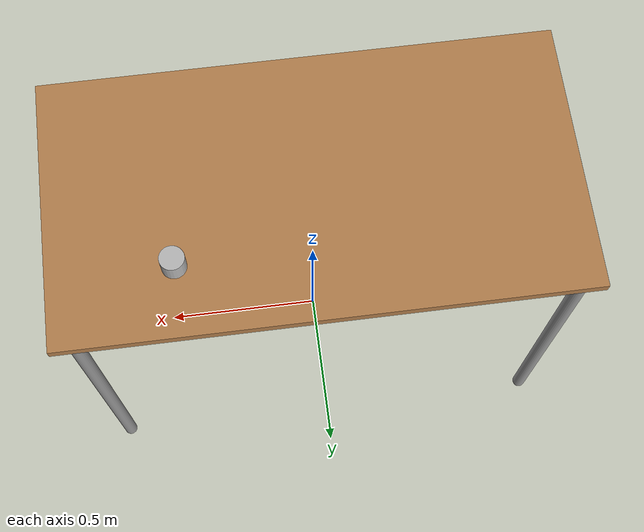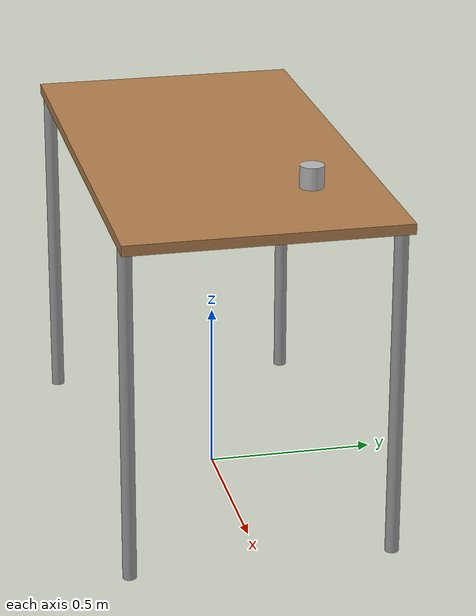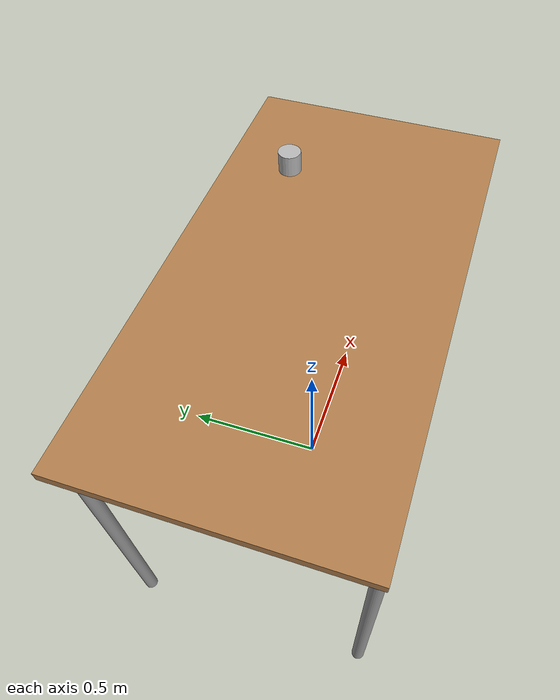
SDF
<sdf version="1.4">
 <world name="default">
  <scene><ambient>0.68 0.68 0.68 1.0</ambient><sky><clouds><speed>12</speed></clouds></sky></scene>
  <physics type="ode">
   <max_step_size>0.001</max_step_size>
   <real_time_factor>1</real_time_factor>
   <real_time_update_rate>1000</real_time_update_rate>
   <gravity>0 0 -9.8</gravity>
  </physics>
  <include><uri>model://sun</uri></include>
  <include><uri>model://table</uri></include>
  <include><uri>model://beer</uri><pose>0.4 0.2 1.02 0 0 0</pose></include>
 </world>
</sdf>

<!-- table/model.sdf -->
<sdf version="1.5">
  <model name="table">
    <static>true</static>
    <link name="link">
      <collision name="surface">
        <pose>0 0 1.0 0 0 0</pose>
        <geometry>
          <box>
            <size>1.5 0.8 0.03</size>
          </box>
        </geometry>
        <surface>
          <friction>
            <ode>
              <mu>0.6</mu>
              <mu2>0.6</mu2>
            </ode>
          </friction>
        </surface>
      </collision>
      <visual name="visual1">
        <pose>0 0 1.0 0 0 0</pose>
        <geometry>
          <box>
            <size>1.5 0.8 0.03</size>
          </box>
        </geometry>
        <material>
          <script>
            <uri>model://media/materials/scripts/gazebo.material</uri>
            <name>Gazebo/Wood</name>
          </script>
        </material>
      </visual>
      <collision name="front_left_leg">
        <pose>0.68 0.38 0.5 0 0 0</pose>
        <geometry>
          <cylinder>
            <radius>0.02</radius>
            <length>1.0</length>
          </cylinder>
        </geometry>
      </collision>
      <visual name="front_left_leg">
        <pose>0.68 0.38 0.5 0 0 0</pose>
        <geometry>
          <cylinder>
            <radius>0.02</radius>
            <length>1.0</length>
          </cylinder>
        </geometry>
        <material>
          <script>
            <uri>model://media/materials/scripts/gazebo.material</uri>
            <name>Gazebo/Grey</name>
          </script>
        </material>
      </visual>
      <collision name="front_right_leg">
        <pose>0.68 -0.38 0.5 0 0 0</pose>
        <geometry>
          <cylinder>
            <radius>0.02</radius>
            <length>1.0</length>
          </cylinder>
        </geometry>
      </collision>
      <visual name="front_right_leg">
        <pose>0.68 -0.38 0.5 0 0 0</pose>
        <geometry>
          <cylinder>
            <radius>0.02</radius>
            <length>1.0</length>
          </cylinder>
        </geometry>
        <material>
          <script>
            <uri>model://media/materials/scripts/gazebo.material</uri>
            <name>Gazebo/Grey</name>
          </script>
        </material>
      </visual>
      <collision name="back_right_leg">
        <pose>-0.68 -0.38 0.5 0 0 0</pose>
        <geometry>
          <cylinder>
            <radius>0.02</radius>
            <length>1.0</length>
          </cylinder>
        </geometry>
      </collision>
      <visual name="back_right_leg">
        <pose>-0.68 -0.38 0.5 0 0 0</pose>
        <geometry>
          <cylinder>
            <radius>0.02</radius>
            <length>1.0</length>
          </cylinder>
        </geometry>
        <material>
          <script>
            <uri>model://media/materials/scripts/gazebo.material</uri>
            <name>Gazebo/Grey</name>
          </script>
        </material>
      </visual>
      <collision name="back_left_leg">
        <pose>-0.68 0.38 0.5 0 0 0</pose>
        <geometry>
          <cylinder>
            <radius>0.02</radius>
            <length>1.0</length>
          </cylinder>
        </geometry>
      </collision>
      <visual name="back_left_leg">
        <pose>-0.68 0.38 0.5 0 0 0</pose>
        <geometry>
          <cylinder>
            <radius>0.02</radius>
            <length>1.0</length>
          </cylinder>
        </geometry>
        <material>
          <script>
            <uri>model://media/materials/scripts/gazebo.material</uri>
            <name>Gazebo/Grey</name>
          </script>
        </material>
      </visual>
    </link>
  </model>
</sdf>

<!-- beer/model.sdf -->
<sdf version='1.4'>
  <model name="beer">
    <link name='link'>
      <pose>0 0 0 0 0 0</pose>
      <inertial>
        <mass>0.390</mass>
        <inertia>
          <ixx>0.00058</ixx>
          <ixy>0</ixy>
          <ixz>0</ixz>
          <iyy>0.00058</iyy>
          <iyz>0</iyz>
          <izz>0.00025</izz>
        </inertia>
      </inertial>
      <collision name='collision'>
        <geometry>
          <cylinder>
            <radius>0.03500</radius>
            <length>0.12000</length>
          </cylinder>
        </geometry>
      </collision>

      <visual name='visual'>
        <geometry>
          <cylinder>
            <radius>0.03500</radius>
            <length>0.12000</length>
          </cylinder>
        </geometry>

        <material>
          <script>
            <uri>model://beer/materials/scripts</uri>
            <uri>model://beer/materials/textures</uri>
            <name>Beer/Diffuse</name>
          </script>
        </material>
      </visual>
    </link>
  </model>
</sdf>
